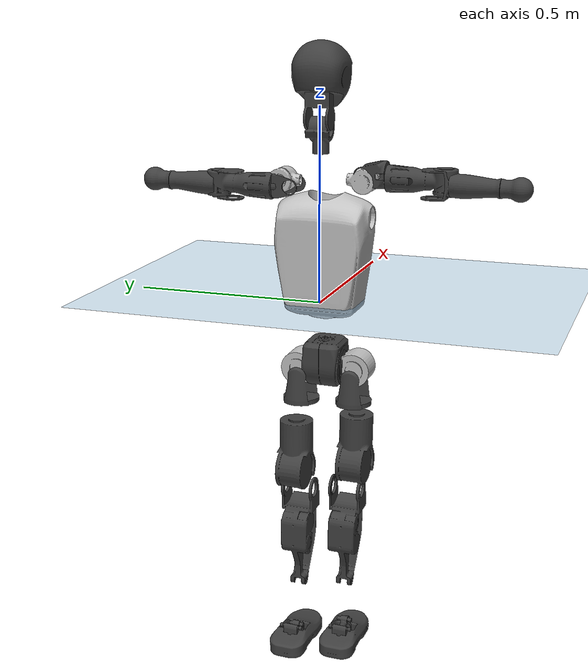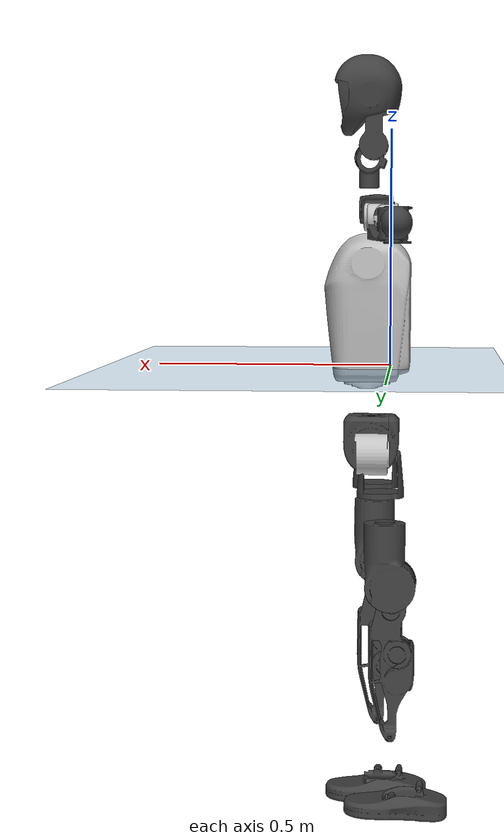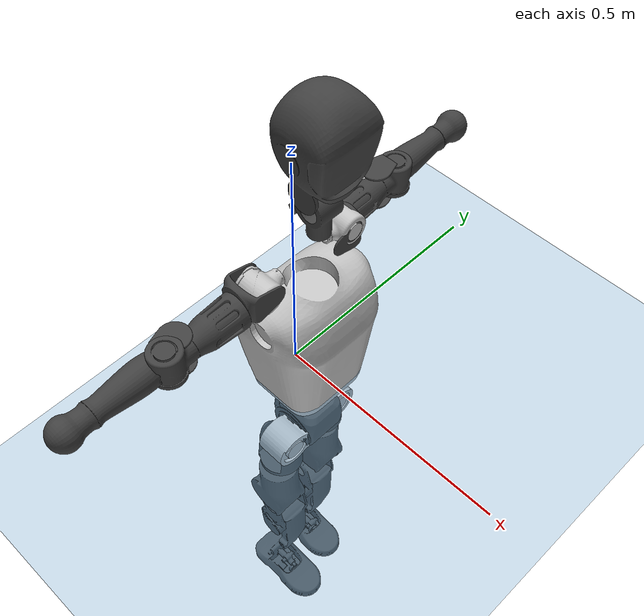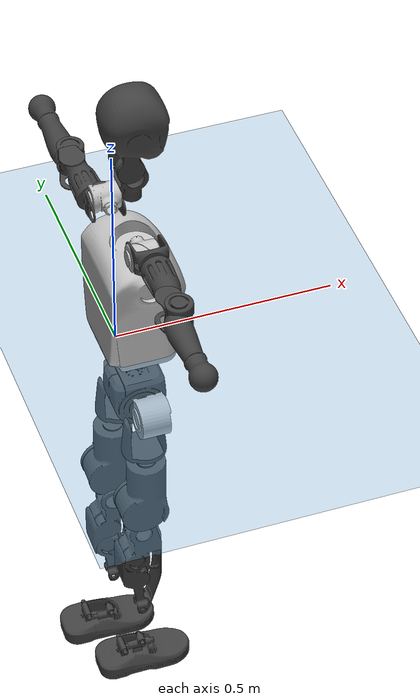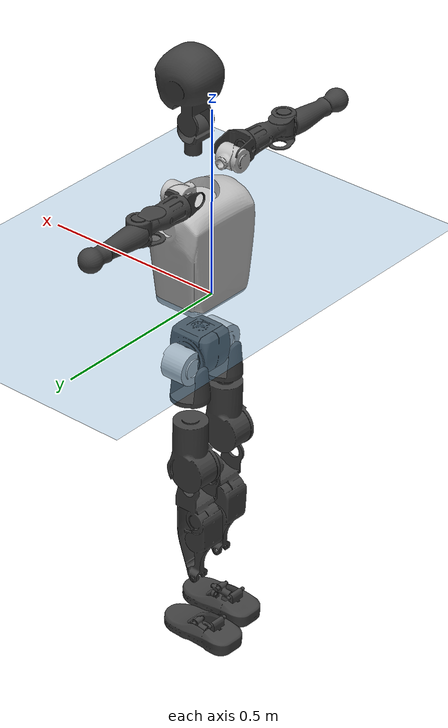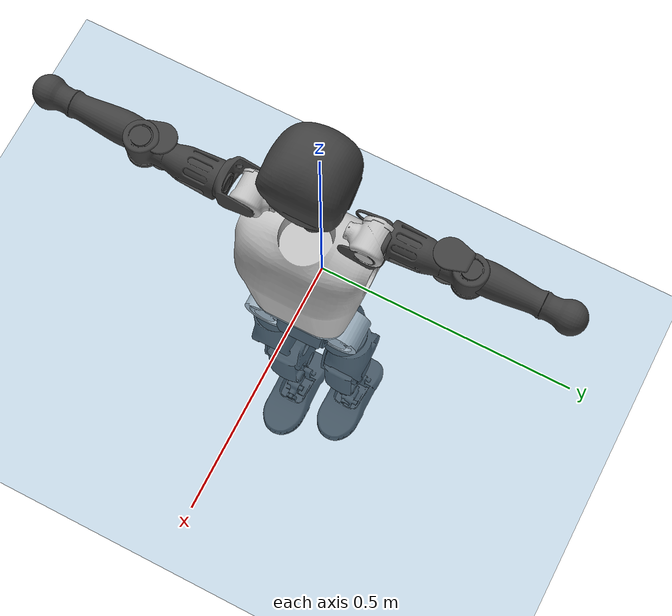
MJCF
<mujoco model="T1">
  <compiler angle="radian" assetdir="assets" balanceinertia="true" inertiafromgeom="false"/>

  <option timestep="0.005" density="1.2" viscosity="2e-05"/>

  <size nkey="1"/>

  <visual>
    <quality shadowsize="8192"/>
    <map shadowclip="0.5"/>
  </visual>

  <default>
    <default class="/">
      <joint armature="0.01" damping="0.01" frictionloss="0.1"/>
      <geom contype="0" conaffinity="0" group="1" solref="-1000 -80"/>
      <site size="0.01 0.005 0.005" group="5"/>
      <general forcelimited="true" biastype="affine" gainprm="25" biasprm="0 -25 -0.6"/>
      <default class="t1">
        <geom rgba="0.25 0.25 0.25 1"/>
        <default class="visual">
          <geom type="mesh" group="2"/>
        </default>
        <default class="collision">
          <geom group="3"/>
        </default>
        <default class="foot">
          <geom size="0.1115 0.05 0.015" type="box" condim="6" group="4" priority="1" solimp="0.015 1 0.015"/>
        </default>
        <default class="reward_collision_sphere">
          <geom group="5" rgba="1 0 0 1"/>
        </default>
      </default>
    </default>
  </default>

  <asset>
    <texture type="skybox" colorspace="auto" name="//unnamed_texture_0" builtin="gradient" rgb1="0.95 0.95 0.95" rgb2="0.95 0.95 0.95" width="100" height="600"/>
    <texture type="2d" colorspace="auto" name="texplane" builtin="checker" rgb1="0.345 0.575 0.748" rgb2="0.345 0.575 0.748" markrgb="1 1 1" width="512" height="512"/>
    <material name="MatPlane" class="/" texture="texplane" texuniform="true" texrepeat="2 2" specular="0.9"/>
    <mesh name="Trunk" class="/" file="Trunk.stl"/>
    <mesh name="H1" class="/" file="H1.stl"/>
    <mesh name="H2" class="/" file="H2.stl"/>
    <mesh name="AL1" class="/" file="AL1.stl"/>
    <mesh name="AL2" class="/" file="AL2.stl"/>
    <mesh name="AL3" class="/" file="AL3.stl"/>
    <mesh name="left_hand_link" class="/" file="left_hand_link.stl"/>
    <mesh name="AR1" class="/" file="AR1.stl"/>
    <mesh name="AR2" class="/" file="AR2.stl"/>
    <mesh name="AR3" class="/" file="AR3.stl"/>
    <mesh name="right_hand_link" class="/" file="right_hand_link.stl"/>
    <mesh name="Waist" class="/" file="Waist.stl"/>
    <mesh name="Hip_Pitch_Left" class="/" file="Hip_Pitch_Left.stl"/>
    <mesh name="Hip_Roll_Left" class="/" file="Hip_Roll_Left.stl"/>
    <mesh name="Hip_Yaw_Left" class="/" file="Hip_Yaw_Left.stl"/>
    <mesh name="Shank_Left" class="/" file="Shank_Left.stl"/>
    <mesh name="Ankle_Cross_Left" class="/" file="Ankle_Cross_Left.stl"/>
    <mesh name="left_foot_link" class="/" file="left_foot_link.stl"/>
    <mesh name="Hip_Pitch_Right" class="/" file="Hip_Pitch_Right.stl"/>
    <mesh name="Hip_Roll_Right" class="/" file="Hip_Roll_Right.stl"/>
    <mesh name="Hip_Yaw_Right" class="/" file="Hip_Yaw_Right.stl"/>
    <mesh name="Shank_Right" class="/" file="Shank_Right.stl"/>
    <mesh name="Ankle_Cross_Right" class="/" file="Ankle_Cross_Right.stl"/>
    <mesh name="right_foot_link" class="/" file="right_foot_link.stl"/>
  </asset>

  <worldbody>
    <geom name="floor" class="/" size="100 100 0.125" type="plane" group="0" material="MatPlane"/>
    <light name="toplight_shadow" class="/" pos="0 0 5" dir="0.0990148 0.0990148 -0.990148" type="directional" ambient="0.04 0.04 0.04" diffuse="0.55 0.55 0.55" specular="0.12 0.12 0.12"/>
    <light name="toplight_fill" class="/" pos="0 0 5" dir="0.0990148 0.0990148 -0.990148" type="directional" castshadow="false" ambient="0.04 0.04 0.04" diffuse="0.3 0.3 0.3" specular="0.08 0.08 0.08"/>
    <body name="trunk" childclass="t1" pos="-0.0128558 -0.00169331 0.00290279" quat="0.999995 0.00271907 0.000721694 -0.00168526">
      <inertial pos="0.0327373 -0.00113689 0.164864" quat="0.998665 0.0173759 -0.0450611 0.018301" mass="8.69207" diaginertia="0.00908362 0.0140115 0.347744"/>
      <joint name="//unnamed_joint_0" type="free" armature="0" damping="0" frictionloss="0"/>
      <geom name="//unnamed_geom_1" class="visual" rgba="0.76 0.76 0.76 1" mesh="Trunk"/>
      <geom name="//unnamed_geom_2" class="collision" size="0.0709732 0.0946309 0.141946" pos="0.0395147 0 0.175531" type="box"/>
      <geom name="//unnamed_geom_3" class="reward_collision_sphere" size="0.108826" pos="0.0395147 0 0.146276"/>
      <geom name="//unnamed_geom_4" class="reward_collision_sphere" size="0.0141946" pos="0.0395147 0.0609948 0"/>
      <geom name="//unnamed_geom_5" class="reward_collision_sphere" size="0.0141946" pos="0.0395147 -0.0609948 0"/>
      <geom name="//unnamed_geom_6" class="reward_collision_sphere" size="0.0141946" pos="0.0395147 0.0767817 0.263297"/>
      <geom name="//unnamed_geom_7" class="reward_collision_sphere" size="0.0141946" pos="0.0395147 -0.0767817 0.263297"/>
      <site name="imu" pos="0.0855956 0.0502923 -0.068843" size="0.00946309"/>
      <camera name="track" pos="0 -1.43517 0" quat="0.707107 0.707107 0 0" mode="trackcom"/>
      <camera name="ego_camera" pos="0.0803467 0 0.61436" quat="-0.5 -0.5 0.5 0.5"/>
      <body name="H1" pos="0.0597205 0.0175399 0.373965" quat="0.999992 0.00237021 -0.00078786 -0.00312391">
        <inertial pos="0.0116267 -0.000135286 0.0947074" quat="0.803269 0.04193 0.0178071 0.593872" mass="0.318528" diaginertia="2.96537e-05 5.40227e-05 0.00107676"/>
        <joint name="AAHead_yaw" pos="0 0 0" axis="0.00350868 0.0836873 0.996486" range="-1.49055 1.39581" armature="0.00264611" damping="0.0101374" frictionloss="0.0401112"/>
        <geom name="//unnamed_geom_8" class="visual" mesh="H1"/>
        <body name="H2" pos="-0.00917723 0.00295534 0.0889066" quat="0.999973 -0.00535975 0.000899749 0.00499532">
          <inertial pos="0.00237842 0.0188849 0.14748" quat="0.982765 0.123507 -0.0984446 -0.0960633" mass="0.480034" diaginertia="0.000311316 0.000389799 0.0109458"/>
          <joint name="Head_pitch" pos="0 0 0" axis="0.000349402 -1 0.000472643" stiffness="0.0573027" range="-1.38195 0.349982" armature="0.00390551" damping="0.00202506" frictionloss="0.0896532"/>
          <geom name="//unnamed_geom_9" class="visual" mesh="H2"/>
          <geom name="//unnamed_geom_10" class="collision" size="0.0757047" pos="0.00658579 0 0.160904"/>
          <geom name="//unnamed_geom_11" class="reward_collision_sphere" size="0.0851678" pos="0.0131716 0 0.146276"/>
        </body>
      </body>
      <body name="AL1" pos="0.0281244 0.0598944 0.308094" quat="1 0.000203598 0.000571879 5.87381e-05">
        <inertial pos="0.0172621 0.0150322 0.0143077" quat="0.489893 0.525861 -0.505917 0.476993" mass="0.332136" diaginertia="0.000123057 0.000179791 0.00174499"/>
        <joint name="Left_Shoulder_Pitch" pos="0 0 0" axis="-0.06277 0.997882 0.0170718" range="-3.51475 1.2031" armature="0.00406865" damping="0.0196689" frictionloss="0.157156"/>
        <geom name="//unnamed_geom_12" class="visual" rgba="0.76 0.76 0.76 1" mesh="AL1"/>
        <body name="AL2" pos="-0.00466194 0.0182474 -0.0129704" quat="0.999989 0.00136326 0.00109021 0.00443424">
          <inertial pos="0.00391853 0.0347966 -0.0112962" quat="0.485897 0.512611 -0.488981 0.51189" mass="0.126377" diaginertia="3.21394e-05 4.01057e-05 0.0010784"/>
          <joint name="Left_Shoulder_Roll" pos="0 0 0" axis="-0.998811 0.0423345 0.0241593" stiffness="0.0350733" range="-1.83129 2.05918" armature="0.00923621" damping="0" frictionloss="0.119781"/>
          <geom name="//unnamed_geom_13" class="visual" mesh="AL2"/>
          <body name="AL3" pos="-0.0170493 0.0473302 -0.00129133" quat="0.999981 0.00115707 -0.00524655 0.00307481">
            <inertial pos="0.000947662 0.0538192 -0.0149256" quat="0.735758 0.674718 0.0562872 -0.0157254" mass="0.838133" diaginertia="0.00116543 0.00216477 0.00376775"/>
            <joint name="Left_Elbow_Pitch" pos="0 0 0" axis="0.0266597 -0.999624 0.00648202" stiffness="0.0452301" range="-2.17164 1.96535" armature="0.016432" damping="0.0613995" frictionloss="0.109248"/>
            <geom name="//unnamed_geom_14" class="visual" mesh="AL3"/>
            <geom name="//unnamed_geom_15" class="collision" size="0.0283893 0.0709732" pos="0 0.0358793 0" quat="0.707105 0.707108 0 0" type="cylinder"/>
            <geom name="//unnamed_geom_16" class="reward_collision_sphere" size="0.0340671"/>
            <body name="left_hand_link" pos="-0.00925789 0.105611 -0.00202214" quat="0.999975 0.00365304 -0.00474705 -0.00376259">
              <inertial pos="-0.0189437 0.0939016 0.00670067" quat="0.727748 0.684893 -0.00981386 -0.0347715" mass="0.343579" diaginertia="0.0011291 0.00163222 0.00185133"/>
              <joint name="Left_Elbow_Yaw" pos="0 0 0" axis="0.0630942 -0.0128706 0.997925" range="-2.66551 0.243322" armature="0.00209027" damping="0" frictionloss="0.025921"/>
              <geom name="//unnamed_geom_17" class="visual" mesh="left_hand_link"/>
              <geom name="//unnamed_geom_18" class="collision" size="0.0283893 0.082802" pos="0 0.0932861 0" quat="0.707105 0.707108 0 0" type="cylinder"/>
              <geom name="//unnamed_geom_19" class="reward_collision_sphere" size="0.0473154"/>
              <geom name="//unnamed_geom_20" class="reward_collision_sphere" size="0.0331208" pos="0 0.0789344 0"/>
              <geom name="//unnamed_geom_21" class="reward_collision_sphere" size="0.0331208" pos="0 0.154281 0"/>
            </body>
          </body>
        </body>
      </body>
      <body name="AR1" pos="0.0432344 -0.0599726 0.315476" quat="0.999982 0.00535572 0.00213656 0.00134792">
        <inertial pos="-0.011245 -0.04096 -0.000376235" quat="0.504407 0.494596 -0.504651 0.496262" mass="0.484822" diaginertia="0.000191957 0.000256858 0.00208888"/>
        <joint name="Right_Shoulder_Pitch" pos="0 0 0" axis="0.00381607 -0.99964 0.0265467" range="-1.30208 3.13808" armature="0.00388521" damping="0.0957606" frictionloss="0.150778"/>
        <geom name="//unnamed_geom_22" class="visual" rgba="0.76 0.76 0.76 1" mesh="AR1"/>
        <body name="AR2" pos="0.00480607 -0.0439699 0.016596" quat="0.999995 -0.00305222 -0.000214728 -0.00104453">
          <inertial pos="0.0142749 -0.041546 0.0177114" quat="0.501685 0.474637 -0.527607 0.494634" mass="0.109671" diaginertia="4.1225e-05 6.71404e-05 0.0008676"/>
          <joint name="Right_Shoulder_Roll" pos="0 0 0" axis="-0.998734 0.00256084 0.0502469" stiffness="0.0783626" range="-2.10135 1.69017" armature="0.00505399" damping="0" frictionloss="0.112524"/>
          <geom name="//unnamed_geom_23" class="visual" mesh="AR2"/>
          <body name="AR3" pos="0.00387235 -0.056064 -0.00871796" quat="0.999998 -0.00101467 0.000541668 0.00152595">
            <inertial pos="0.0167564 -0.0704617 0.00448647" quat="0.671961 0.74003 -0.0183687 0.0220709" mass="0.842494" diaginertia="0.00168857 0.00241935 0.00318911"/>
            <joint name="Right_Elbow_Pitch" pos="0 0 0" axis="-0.0381711 0.998453 0.04043" stiffness="0.0733024" range="-2.23373 2.52232" armature="0.0105927" damping="0.0378704" frictionloss="0.174773"/>
            <geom name="//unnamed_geom_24" class="visual" mesh="AR3"/>
            <geom name="//unnamed_geom_25" class="collision" size="0.0283893 0.0709732" pos="0 -0.0358793 0" quat="0.707105 0.707108 0 0" type="cylinder"/>
            <geom name="//unnamed_geom_26" class="reward_collision_sphere" size="0.0340671"/>
            <body name="right_hand_link" pos="-0.012634 -0.117391 -0.00672805" quat="0.999999 -0.00134581 -0.000741418 -0.000646992">
              <inertial pos="-0.00466723 -0.0717351 -0.0146589" quat="0.706386 0.707827 0.000260655 -0.000207804" mass="0.307467" diaginertia="0.000986842 0.00199225 0.00174373"/>
              <joint name="Right_Elbow_Yaw" pos="0 0 0" axis="0.0144619 0.0159016 0.999769" range="-0.244216 2.62184" armature="0.0091296" damping="0.049481" frictionloss="0.171999"/>
              <geom name="//unnamed_geom_27" class="visual" mesh="right_hand_link"/>
              <geom name="//unnamed_geom_28" class="collision" size="0.0283893 0.082802" pos="0 -0.0932861 0" quat="0.707105 0.707108 0 0" type="cylinder"/>
              <geom name="//unnamed_geom_29" class="reward_collision_sphere" size="0.0473154"/>
              <geom name="//unnamed_geom_30" class="reward_collision_sphere" size="0.0331208" pos="0 -0.0789344 0"/>
              <geom name="//unnamed_geom_31" class="reward_collision_sphere" size="0.0331208" pos="0 -0.154281 0"/>
            </body>
          </body>
        </body>
      </body>
      <body name="Waist" pos="0.053084 -0.00271764 -0.176862" quat="0.999992 0.00243369 -0.00305685 0.00113612">
        <inertial pos="0.00130282 0.00254179 0.0147387" quat="0.983681 -0.0178492 -0.16956 0.0574654" mass="2.48913" diaginertia="0.000497961 0.00089434 0.0237365"/>
        <joint name="Waist" pos="0 0 0" axis="-0.00406975 0.072834 0.997336" stiffness="0.0128696" range="-1.32834 1.8093" armature="0.00841201" damping="0.0197345" frictionloss="0.171624"/>
        <geom name="//unnamed_geom_32" class="visual" mesh="Waist"/>
        <body name="Hip_Pitch_Left" pos="-0.00223697 0.06776 0.0083473" quat="0.999999 -0.00137971 -0.00042786 0.000637948">
          <inertial pos="0.00706351 0.00941976 -0.0358011" quat="0.977357 0.202508 0.0399404 0.0465598" mass="0.895229" diaginertia="0.000271439 0.000239312 0.00699991"/>
          <joint name="Left_Hip_Pitch" pos="0 0 0" axis="0.0260597 0.999559 0.0142454" range="-1.62291 1.54389" armature="0.00386933" damping="0" frictionloss="0.0964118"/>
          <geom name="//unnamed_geom_33" class="visual" rgba="0.76 0.76 0.76 1" mesh="Hip_Pitch_Left"/>
          <body name="Hip_Roll_Left" pos="-0.0166488 -0.00743086 -0.0353254" quat="0.999969 0.00293115 0.00554304 -0.00467322">
            <inertial pos="-0.0121471 -0.00335851 -0.0768703" quat="0.706013 -0.0121605 -0.0228232 0.707726" mass="0.47159" diaginertia="0.000323955 0.000347423 0.00387983"/>
            <joint name="Left_Hip_Roll" pos="0 0 0" axis="-0.997066 -0.0740844 0.0192507" range="-1.91207 0.295425" armature="0.0154668" damping="0.0611159" frictionloss="0.140942"/>
            <geom name="//unnamed_geom_34" class="visual" mesh="Hip_Roll_Left"/>
            <geom name="//unnamed_geom_35" class="reward_collision_sphere" size="0.052047"/>
            <body name="Hip_Yaw_Left" pos="-0.0117392 0.00852624 -0.131523" quat="0.999969 -0.00182037 -0.00356091 -0.00679925">
              <inertial pos="0.0126577 0.00756805 -0.121917" quat="0.677211 -0.00832259 -0.0402223 0.734641" mass="2.06843" diaginertia="0.00270738 0.00497292 0.0177106"/>
              <joint name="Left_Hip_Yaw" pos="0 0 0" axis="0.0294951 -0.028433 -0.99916" stiffness="0.0808385" range="-1.35945 0.688674" armature="0.0090812" damping="0" frictionloss="0.0239667"/>
              <geom name="//unnamed_geom_36" class="visual" mesh="Hip_Yaw_Left"/>
              <geom name="//unnamed_geom_37" class="collision" size="0.0473154 0.0757047" type="cylinder"/>
              <body name="Shank_Left" pos="-0.0162009 -0.0167409 -0.186787" quat="1 0.000285493 -0.000781064 0.000205008">
                <inertial pos="0.0139493 -0.00810443 -0.190469" quat="0.991858 0.0222659 -0.110662 0.0589572" mass="1.61872" diaginertia="0.00411609 0.00482319 0.00997653"/>
                <joint name="Left_Knee_Pitch" pos="0 0 0" axis="-0.0486293 0.997302 0.0549857" stiffness="0.0275594" range="-0.0527015 2.05662" armature="0.0160369" damping="0" frictionloss="0.0132033"/>
                <geom name="//unnamed_geom_38" class="visual" mesh="Shank_Left"/>
                <geom name="//unnamed_geom_39" class="collision" size="0.0473154 0.0709732" pos="0 0 -0.175531" type="cylinder"/>
                <geom name="//unnamed_geom_40" class="reward_collision_sphere" size="0.0615101"/>
                <body name="Ankle_Cross_Left" pos="-0.00444549 0.00523714 -0.419884" quat="0.999996 2.52199e-06 -0.00214921 -0.00160556">
                  <inertial pos="-0.00454961 -0.00718321 -0.00663016" quat="0.44508 0.55137 0.533333 0.462007" mass="0.0535719" diaginertia="2.66819e-06 4.1076e-06 5.94075e-05"/>
                  <joint name="Left_Ankle_Pitch" pos="0 0 0" axis="-0.0588645 0.997617 0.0359767" stiffness="0.0466927" range="-0.888414 0.610835" armature="0.00130539" damping="0.0428275" frictionloss="0.144085"/>
                  <geom name="//unnamed_geom_41" class="visual" mesh="Ankle_Cross_Left"/>
                  <body name="left_foot_link" pos="-0.018128 -0.00592388 -0.00739058" quat="1 0.000249406 -0.0001812 -0.000244323">
                    <inertial pos="0.0169046 -0.0128595 -0.0136517" quat="-0.00138772 0.637168 -0.0200222 0.770463" mass="0.588514" diaginertia="0.000326484 0.000384276 0.0163369"/>
                    <joint name="Left_Ankle_Roll" pos="0 0 0" axis="-0.99992 0.0100809 -0.00758374" range="-0.680674 0.658524" armature="0.00859134" damping="0.0987507" frictionloss="0.122686"/>
                    <geom name="//unnamed_geom_42" class="visual" mesh="left_foot_link"/>
                    <geom name="left_foot" class="foot" size="0.151271 0.0751779 0.0204046" pos="0.00658579 0 -0.0219414"/>
                    <geom name="//unnamed_geom_44" class="reward_collision_sphere" size="0.0492081" pos="0.00658579 0 -0.0219414"/>
                    <geom name="//unnamed_geom_45" class="reward_collision_sphere" size="0.0283893" pos="0.062565 -0.0165045 -0.0219414"/>
                    <geom name="//unnamed_geom_46" class="reward_collision_sphere" size="0.0283893" pos="-0.0461005 -0.0165045 -0.0219414"/>
                    <site name="left_foot" class="foot" pos="0.00658579 0 -0.0219414" size="0.00946309"/>
                  </body>
                </body>
              </body>
            </body>
          </body>
        </body>
        <body name="Hip_Pitch_Right" pos="0.0124978 -0.0811105 0.0128776" quat="0.999995 0.00212146 0.000479736 -0.00247418">
          <inertial pos="0.00645481 0.00611903 -0.0108999" quat="0.972148 -0.232383 -0.0107577 0.0284815" mass="0.800774" diaginertia="0.00027065 0.000219018 0.00720319"/>
          <joint name="Right_Hip_Pitch" pos="0 0 0" axis="-0.0499403 -0.998699 0.0103532" stiffness="0.0501628" range="-1.19195 1.44983" armature="0.00826743" damping="0" frictionloss="0.174496"/>
          <geom name="//unnamed_geom_47" class="visual" rgba="0.76 0.76 0.76 1" mesh="Hip_Pitch_Right"/>
          <body name="Hip_Roll_Right" pos="-0.016986 -0.000115412 -0.0379583" quat="1 -6.84228e-05 -9.81328e-05 0.000412747">
            <inertial pos="0.0091997 0.0143043 -0.0931499" quat="0.728261 -0.0270527 0.0130926 0.68464" mass="0.385577" diaginertia="0.000260339 0.000383508 0.00324008"/>
            <joint name="Right_Hip_Roll" pos="0 0 0" axis="-0.996433 0.0622713 -0.0569497" stiffness="0.0288719" range="-0.241481 1.71603" armature="0.0160108" damping="0.00851735" frictionloss="0.0623515"/>
            <geom name="//unnamed_geom_48" class="visual" mesh="Hip_Roll_Right"/>
            <geom name="//unnamed_geom_49" class="reward_collision_sphere" size="0.052047"/>
            <body name="Hip_Yaw_Right" pos="-0.0014369 -0.0101343 -0.10499" quat="0.999992 0.00167968 -0.00302313 -0.00185291">
              <inertial pos="-0.0159053 -0.0164788 -0.118335" quat="0.737639 0.0415769 0.0121689 0.673804" mass="1.80154" diaginertia="0.00307045 0.00537371 0.0209514"/>
              <joint name="Right_Hip_Yaw" pos="0 0 0" axis="-0.00376419 -0.000159756 -0.999993" range="-0.834653 0.843928" armature="0.011967" damping="0.0407515" frictionloss="0.0984172"/>
              <geom name="//unnamed_geom_50" class="visual" mesh="Hip_Yaw_Right"/>
              <geom name="//unnamed_geom_51" class="collision" size="0.0473154 0.0757047" type="cylinder"/>
              <body name="Shank_Right" pos="-0.0161331 0.0168117 -0.210646" quat="1 0.000259434 0.00024937 -0.000420753">
                <inertial pos="0.0137319 -0.0188286 -0.168767" quat="0.99612 -0.0664648 -0.00539234 -0.0574237" mass="1.1363" diaginertia="0.00477535 0.00717777 0.013763"/>
                <joint name="Right_Knee_Pitch" pos="0 0 0" axis="0.0254319 -0.999539 -0.0166074" stiffness="0.00424724" range="-2.11278 -0.0829749" armature="0.00887574" damping="0" frictionloss="0.14416"/>
                <geom name="//unnamed_geom_52" class="visual" mesh="Shank_Right"/>
                <geom name="//unnamed_geom_53" class="collision" size="0.0473154 0.0709732" pos="0 0 -0.175531" type="cylinder"/>
                <geom name="//unnamed_geom_54" class="reward_collision_sphere" size="0.0615101"/>
                <body name="Ankle_Cross_Right" pos="-0.00180677 -0.0032622 -0.402196" quat="0.999998 -0.000899337 0.000764282 0.00179486">
                  <inertial pos="0.00566202 0.0153275 -0.0198589" quat="0.491825 0.482751 0.571005 0.446109" mass="0.0580173" diaginertia="3.40001e-06 7.17914e-06 9.51922e-05"/>
                  <joint name="Right_Ankle_Pitch" pos="0 0 0" axis="-0.0461132 -0.997614 0.0513872" range="-0.569398 0.864266" armature="0.00257922" damping="0.0912993" frictionloss="0.110522"/>
                  <geom name="//unnamed_geom_55" class="visual" mesh="Ankle_Cross_Right"/>
                  <body name="right_foot_link" pos="-0.00519912 -0.00147959 -0.0337352" quat="1 -0.00014018 -0.000173909 9.17021e-05">
                    <inertial pos="0.00742777 -0.00950309 -0.0293283" quat="-0.020325 0.623658 0.0571924 0.779338" mass="0.630548" diaginertia="0.000268699 0.000403033 0.0153167"/>
                    <joint name="Right_Ankle_Roll" pos="0 0 0" axis="-0.999861 0.0164384 0.00282175" stiffness="0.0139004" range="-0.370018 0.690191" armature="0.0132745" damping="0.0325906" frictionloss="0.15586"/>
                    <geom name="//unnamed_geom_56" class="visual" mesh="right_foot_link"/>
                    <geom name="right_foot" class="foot" size="0.0846389 0.0397148 0.00925946" pos="0.00658579 0 -0.0219414"/>
                    <geom name="//unnamed_geom_58" class="reward_collision_sphere" size="0.0378523"/>
                    <geom name="//unnamed_geom_59" class="reward_collision_sphere" size="0.0283893" pos="0.00658579 0 -0.0219414"/>
                    <geom name="//unnamed_geom_60" class="reward_collision_sphere" size="0.0283893" pos="0.062565 0.0165045 -0.0219414"/>
                    <geom name="//unnamed_geom_61" class="reward_collision_sphere" size="0.0283893" pos="-0.0461005 0.0165045 -0.0219414"/>
                    <site name="right_foot" class="foot" pos="0.00658579 0 -0.0219414" size="0.00946309"/>
                  </body>
                </body>
              </body>
            </body>
          </body>
        </body>
      </body>
    </body>
  </worldbody>

  <contact>
    <pair class="/" geom1="floor" geom2="left_foot" name="//unnamed_contact_0"/>
    <pair class="/" geom1="floor" geom2="right_foot" name="//unnamed_contact_1"/>
  </contact>

  <actuator>
    <general name="AAHead_yaw" class="/" joint="AAHead_yaw" forcerange="-3.32555 3.32555" gainprm="18.0655" biasprm="0 -18.0655 -0.778058"/>
    <general name="Head_pitch" class="/" joint="Head_pitch" forcerange="-4.92495 4.92495" gainprm="18.0655" biasprm="0 -18.0655 -0.778058"/>
    <general name="Left_Shoulder_Pitch" class="/" joint="Left_Shoulder_Pitch" forcerange="-14.2303 14.2303" gainprm="18.0655" biasprm="0 -18.0655 -0.778058"/>
    <general name="Left_Shoulder_Roll" class="/" joint="Left_Shoulder_Roll" forcerange="-19.4502 19.4502" gainprm="18.0655" biasprm="0 -18.0655 -0.778058"/>
    <general name="Left_Elbow_Pitch" class="/" joint="Left_Elbow_Pitch" forcerange="-8.22172 8.22172" gainprm="18.0655" biasprm="0 -18.0655 -0.778058"/>
    <general name="Left_Elbow_Yaw" class="/" joint="Left_Elbow_Yaw" forcerange="-9.6195 9.6195" gainprm="18.0655" biasprm="0 -18.0655 -0.778058"/>
    <general name="Right_Shoulder_Pitch" class="/" joint="Right_Shoulder_Pitch" forcerange="-23.581 23.581" gainprm="18.0655" biasprm="0 -18.0655 -0.778058"/>
    <general name="Right_Shoulder_Roll" class="/" joint="Right_Shoulder_Roll" forcerange="-21.9105 21.9105" gainprm="18.0655" biasprm="0 -18.0655 -0.778058"/>
    <general name="Right_Elbow_Pitch" class="/" joint="Right_Elbow_Pitch" forcerange="-16.5023 16.5023" gainprm="18.0655" biasprm="0 -18.0655 -0.778058"/>
    <general name="Right_Elbow_Yaw" class="/" joint="Right_Elbow_Yaw" forcerange="-12.1024 12.1024" gainprm="18.0655" biasprm="0 -18.0655 -0.778058"/>
    <general name="Waist" class="/" joint="Waist" forcerange="-35.5095 35.5095" gainprm="18.0655" biasprm="0 -18.0655 -0.778058"/>
    <general name="Left_Hip_Pitch" class="/" joint="Left_Hip_Pitch" forcerange="-42.1268 42.1268" gainprm="18.0655" biasprm="0 -18.0655 -0.778058"/>
    <general name="Left_Hip_Roll" class="/" joint="Left_Hip_Roll" forcerange="-21.4276 21.4276" gainprm="18.0655" biasprm="0 -18.0655 -0.778058"/>
    <general name="Left_Hip_Yaw" class="/" joint="Left_Hip_Yaw" forcerange="-43.2801 43.2801" gainprm="18.0655" biasprm="0 -18.0655 -0.778058"/>
    <general name="Left_Knee_Pitch" class="/" joint="Left_Knee_Pitch" forcerange="-33.5141 33.5141" gainprm="18.0655" biasprm="0 -18.0655 -0.778058"/>
    <general name="Left_Ankle_Pitch" class="/" joint="Left_Ankle_Pitch" forcerange="-26.8548 26.8548" gainprm="18.0655" biasprm="0 -18.0655 -0.778058"/>
    <general name="Left_Ankle_Roll" class="/" joint="Left_Ankle_Roll" forcerange="-16.1709 16.1709" gainprm="18.0655" biasprm="0 -18.0655 -0.778058"/>
    <general name="Right_Hip_Pitch" class="/" joint="Right_Hip_Pitch" forcerange="-50.3116 50.3116" gainprm="18.0655" biasprm="0 -18.0655 -0.778058"/>
    <general name="Right_Hip_Roll" class="/" joint="Right_Hip_Roll" forcerange="-35.0814 35.0814" gainprm="18.0655" biasprm="0 -18.0655 -0.778058"/>
    <general name="Right_Hip_Yaw" class="/" joint="Right_Hip_Yaw" forcerange="-37.897 37.897" gainprm="18.0655" biasprm="0 -18.0655 -0.778058"/>
    <general name="Right_Knee_Pitch" class="/" joint="Right_Knee_Pitch" forcerange="-87.0938 87.0938" gainprm="18.0655" biasprm="0 -18.0655 -0.778058"/>
    <general name="Right_Ankle_Pitch" class="/" joint="Right_Ankle_Pitch" forcerange="-30.1565 30.1565" gainprm="18.0655" biasprm="0 -18.0655 -0.778058"/>
    <general name="Right_Ankle_Roll" class="/" joint="Right_Ankle_Roll" forcerange="-9.52081 9.52081" gainprm="18.0655" biasprm="0 -18.0655 -0.778058"/>
  </actuator>

  <sensor>
    <gyro site="imu" name="imu_angular_velocity"/>
    <velocimeter site="imu" name="imu_linear_velocity"/>
    <framelinvel objtype="site" objname="left_foot" name="left_foot_global_linear_velocity"/>
    <framelinvel objtype="site" objname="right_foot" name="right_foot_global_linear_velocity"/>
  </sensor>

  <keyframe>
    <key name="home" qpos="0 0 0.6385 1 0 0 0 0 0 0 1.4 0 -0.4 0 -1.4 0 0.4 0 -0.4 0 0 0.8 -0.4 0 0.4 0 0 -0.8 0.4 0"/>
  </keyframe>
</mujoco>
